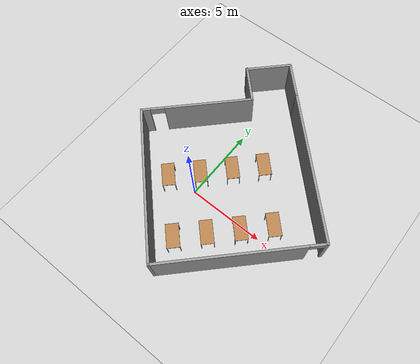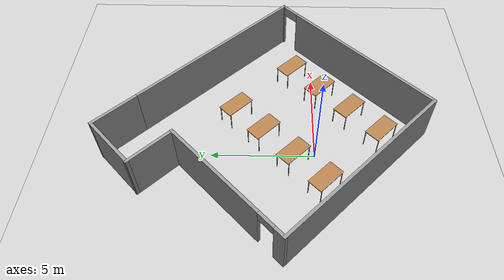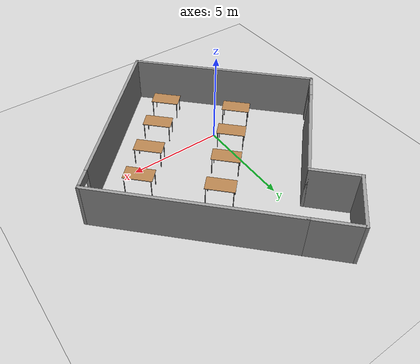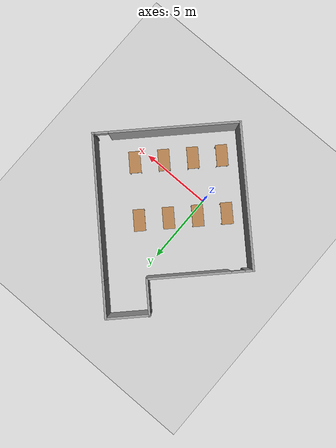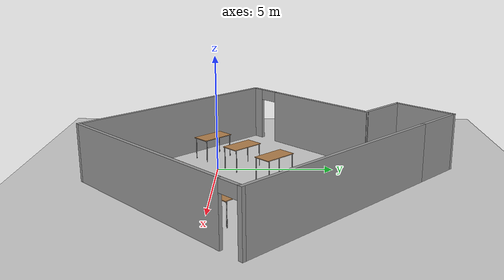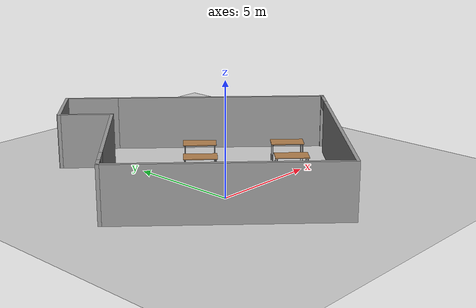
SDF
<sdf version="1.7">
 <world name="default">
  <scene><ambient>1 1 1 1</ambient><shadows>0</shadows><background>0.7 0.7 0.7 1</background></scene>
  <light name="sun" type="directional">
   <cast_shadows>0</cast_shadows>
   <pose>0 0 10 0 -0 -0.785398</pose>
   <diffuse>0.8 0.8 0.8 1</diffuse>
   <specular>0.2 0.2 0.2 1</specular>
   <attenuation>
    <range>1000</range>
    <constant>0.9</constant>
    <linear>0.01</linear>
    <quadratic>0.001</quadratic>
   </attenuation>
   <direction>-0.5 0.1 -0.9</direction>
   <spot><inner_angle>0</inner_angle><outer_angle>0</outer_angle><falloff>0</falloff></spot>
  </light>
  <light name="light_from_below_1" type="directional">
   <cast_shadows>0</cast_shadows>
   <pose>0 0 0 0 -0 -0.785398</pose>
   <diffuse>0.8 0.8 0.8 1</diffuse>
   <specular>0.2 0.2 0.2 1</specular>
   <attenuation>
    <range>1000</range>
    <constant>0.9</constant>
    <linear>0.01</linear>
    <quadratic>0.001</quadratic>
   </attenuation>
   <direction>-0.5 0.1 0.9</direction>
   <spot><inner_angle>0</inner_angle><outer_angle>0</outer_angle><falloff>0</falloff></spot>
  </light>
  <light name="light_from_below_2" type="directional">
   <cast_shadows>0</cast_shadows>
   <pose>0 0 0 0 -0 -0.785398</pose>
   <diffuse>0.8 0.8 0.8 1</diffuse>
   <specular>0.2 0.2 0.2 1</specular>
   <attenuation>
    <range>1000</range>
    <constant>0.9</constant>
    <linear>0.01</linear>
    <quadratic>0.001</quadratic>
   </attenuation>
   <direction>-0.5 0.1 0.9</direction>
   <spot><inner_angle>0</inner_angle><outer_angle>0</outer_angle><falloff>0</falloff></spot>
  </light>
  <model name="ground_plane">
   <static>1</static>
   <link name="link">
    <collision name="collision">
     <geometry><plane><normal>0 0 1</normal><size>100 100</size></plane></geometry>
     <surface>
      <contact><collide_bitmask>65535</collide_bitmask></contact>
      <friction><ode><mu>100</mu><mu2>50</mu2></ode></friction>
     </surface>
    </collision>
    <visual name="visual">
     <cast_shadows>0</cast_shadows>
     <geometry><plane><normal>0 0 1</normal><size>100 100</size></plane></geometry>
     <material>
      <script><uri>file://media/materials/scripts/gazebo.material</uri><name>Gazebo/Grey</name></script>
     </material>
    </visual>
   </link>
  </model>
  <gravity>0 0 -9.8</gravity>
  <magnetic_field>6e-06 2.3e-05 -4.2e-05</magnetic_field>
  <atmosphere type="adiabatic"/>
  <physics type="ode">
   <max_step_size>0.001</max_step_size>
   <real_time_factor>1</real_time_factor>
   <real_time_update_rate>1000</real_time_update_rate>
  </physics>
  <scene><ambient>0.4 0.4 0.4 1</ambient><background>0.7 0.7 0.7 1</background><shadows>1</shadows></scene>
  <spherical_coordinates>
   <surface_model>EARTH_WGS84</surface_model>
   <latitude_deg>0</latitude_deg>
   <longitude_deg>0</longitude_deg>
   <elevation>0</elevation>
   <heading_deg>0</heading_deg>
  </spherical_coordinates>
  <model name="table">
   <static>1</static>
   <link name="link">
    <collision name="surface">
     <pose>0 0 1 0 -0 0</pose>
     <geometry><box><size>1.5 0.8 0.03</size></box></geometry>
     <surface><friction><ode><mu>0.6</mu><mu2>0.6</mu2></ode></friction></surface>
    </collision>
    <visual name="visual1">
     <pose>0 0 1 0 -0 0</pose>
     <geometry><box><size>1.5 0.8 0.03</size></box></geometry>
     <material>
      <script><uri>file://media/materials/scripts/gazebo.material</uri><name>Gazebo/Wood</name></script>
     </material>
    </visual>
    <collision name="front_left_leg">
     <pose>0.68 0.38 0.5 0 -0 0</pose>
     <geometry><cylinder><radius>0.02</radius><length>1</length></cylinder></geometry>
    </collision>
    <visual name="front_left_leg">
     <pose>0.68 0.38 0.5 0 -0 0</pose>
     <geometry><cylinder><radius>0.02</radius><length>1</length></cylinder></geometry>
     <material>
      <script><uri>file://media/materials/scripts/gazebo.material</uri><name>Gazebo/Grey</name></script>
     </material>
    </visual>
    <collision name="front_right_leg">
     <pose>0.68 -0.38 0.5 0 -0 0</pose>
     <geometry><cylinder><radius>0.02</radius><length>1</length></cylinder></geometry>
    </collision>
    <visual name="front_right_leg">
     <pose>0.68 -0.38 0.5 0 -0 0</pose>
     <geometry><cylinder><radius>0.02</radius><length>1</length></cylinder></geometry>
     <material>
      <script><uri>file://media/materials/scripts/gazebo.material</uri><name>Gazebo/Grey</name></script>
     </material>
    </visual>
    <collision name="back_right_leg">
     <pose>-0.68 -0.38 0.5 0 -0 0</pose>
     <geometry><cylinder><radius>0.02</radius><length>1</length></cylinder></geometry>
    </collision>
    <visual name="back_right_leg">
     <pose>-0.68 -0.38 0.5 0 -0 0</pose>
     <geometry><cylinder><radius>0.02</radius><length>1</length></cylinder></geometry>
     <material>
      <script><uri>file://media/materials/scripts/gazebo.material</uri><name>Gazebo/Grey</name></script>
     </material>
    </visual>
    <collision name="back_left_leg">
     <pose>-0.68 0.38 0.5 0 -0 0</pose>
     <geometry><cylinder><radius>0.02</radius><length>1</length></cylinder></geometry>
    </collision>
    <visual name="back_left_leg">
     <pose>-0.68 0.38 0.5 0 -0 0</pose>
     <geometry><cylinder><radius>0.02</radius><length>1</length></cylinder></geometry>
     <material>
      <script><uri>file://media/materials/scripts/gazebo.material</uri><name>Gazebo/Grey</name></script>
     </material>
    </visual>
   </link>
   <pose>-1.7678 -0.3536 0 0 0 -0.785398</pose>
  </model>
  <model name="table_0_clone">
   <static>1</static>
   <link name="link">
    <collision name="surface">
     <pose>0 0 1 0 -0 0</pose>
     <geometry><box><size>1.5 0.8 0.03</size></box></geometry>
     <surface><friction><ode><mu>0.6</mu><mu2>0.6</mu2></ode></friction></surface>
    </collision>
    <visual name="visual1">
     <pose>0 0 1 0 -0 0</pose>
     <geometry><box><size>1.5 0.8 0.03</size></box></geometry>
     <material>
      <script><uri>file://media/materials/scripts/gazebo.material</uri><name>Gazebo/Wood</name></script>
     </material>
    </visual>
    <collision name="front_left_leg">
     <pose>0.68 0.38 0.5 0 -0 0</pose>
     <geometry><cylinder><radius>0.02</radius><length>1</length></cylinder></geometry>
    </collision>
    <visual name="front_left_leg">
     <pose>0.68 0.38 0.5 0 -0 0</pose>
     <geometry><cylinder><radius>0.02</radius><length>1</length></cylinder></geometry>
     <material>
      <script><uri>file://media/materials/scripts/gazebo.material</uri><name>Gazebo/Grey</name></script>
     </material>
    </visual>
    <collision name="front_right_leg">
     <pose>0.68 -0.38 0.5 0 -0 0</pose>
     <geometry><cylinder><radius>0.02</radius><length>1</length></cylinder></geometry>
    </collision>
    <visual name="front_right_leg">
     <pose>0.68 -0.38 0.5 0 -0 0</pose>
     <geometry><cylinder><radius>0.02</radius><length>1</length></cylinder></geometry>
     <material>
      <script><uri>file://media/materials/scripts/gazebo.material</uri><name>Gazebo/Grey</name></script>
     </material>
    </visual>
    <collision name="back_right_leg">
     <pose>-0.68 -0.38 0.5 0 -0 0</pose>
     <geometry><cylinder><radius>0.02</radius><length>1</length></cylinder></geometry>
    </collision>
    <visual name="back_right_leg">
     <pose>-0.68 -0.38 0.5 0 -0 0</pose>
     <geometry><cylinder><radius>0.02</radius><length>1</length></cylinder></geometry>
     <material>
      <script><uri>file://media/materials/scripts/gazebo.material</uri><name>Gazebo/Grey</name></script>
     </material>
    </visual>
    <collision name="back_left_leg">
     <pose>-0.68 0.38 0.5 0 -0 0</pose>
     <geometry><cylinder><radius>0.02</radius><length>1</length></cylinder></geometry>
    </collision>
    <visual name="back_left_leg">
     <pose>-0.68 0.38 0.5 0 -0 0</pose>
     <geometry><cylinder><radius>0.02</radius><length>1</length></cylinder></geometry>
     <material>
      <script><uri>file://media/materials/scripts/gazebo.material</uri><name>Gazebo/Grey</name></script>
     </material>
    </visual>
   </link>
   <pose>1.06066 -3.18198 0 0 0 -0.785397</pose>
  </model>
  <model name="table_0_clone_1">
   <static>1</static>
   <link name="link">
    <collision name="surface">
     <pose>0 0 1 0 -0 0</pose>
     <geometry><box><size>1.5 0.8 0.03</size></box></geometry>
     <surface><friction><ode><mu>0.6</mu><mu2>0.6</mu2></ode></friction></surface>
    </collision>
    <visual name="visual1">
     <pose>0 0 1 0 -0 0</pose>
     <geometry><box><size>1.5 0.8 0.03</size></box></geometry>
     <material>
      <script><uri>file://media/materials/scripts/gazebo.material</uri><name>Gazebo/Wood</name></script>
     </material>
    </visual>
    <collision name="front_left_leg">
     <pose>0.68 0.38 0.5 0 -0 0</pose>
     <geometry><cylinder><radius>0.02</radius><length>1</length></cylinder></geometry>
    </collision>
    <visual name="front_left_leg">
     <pose>0.68 0.38 0.5 0 -0 0</pose>
     <geometry><cylinder><radius>0.02</radius><length>1</length></cylinder></geometry>
     <material>
      <script><uri>file://media/materials/scripts/gazebo.material</uri><name>Gazebo/Grey</name></script>
     </material>
    </visual>
    <collision name="front_right_leg">
     <pose>0.68 -0.38 0.5 0 -0 0</pose>
     <geometry><cylinder><radius>0.02</radius><length>1</length></cylinder></geometry>
    </collision>
    <visual name="front_right_leg">
     <pose>0.68 -0.38 0.5 0 -0 0</pose>
     <geometry><cylinder><radius>0.02</radius><length>1</length></cylinder></geometry>
     <material>
      <script><uri>file://media/materials/scripts/gazebo.material</uri><name>Gazebo/Grey</name></script>
     </material>
    </visual>
    <collision name="back_right_leg">
     <pose>-0.68 -0.38 0.5 0 -0 0</pose>
     <geometry><cylinder><radius>0.02</radius><length>1</length></cylinder></geometry>
    </collision>
    <visual name="back_right_leg">
     <pose>-0.68 -0.38 0.5 0 -0 0</pose>
     <geometry><cylinder><radius>0.02</radius><length>1</length></cylinder></geometry>
     <material>
      <script><uri>file://media/materials/scripts/gazebo.material</uri><name>Gazebo/Grey</name></script>
     </material>
    </visual>
    <collision name="back_left_leg">
     <pose>-0.68 0.38 0.5 0 -0 0</pose>
     <geometry><cylinder><radius>0.02</radius><length>1</length></cylinder></geometry>
    </collision>
    <visual name="back_left_leg">
     <pose>-0.68 0.38 0.5 0 -0 0</pose>
     <geometry><cylinder><radius>0.02</radius><length>1</length></cylinder></geometry>
     <material>
      <script><uri>file://media/materials/scripts/gazebo.material</uri><name>Gazebo/Grey</name></script>
     </material>
    </visual>
   </link>
   <pose>5.3033 1.06066 0 0 0 -0.785398</pose>
  </model>
  <model name="table_0_clone_2">
   <static>1</static>
   <link name="link">
    <collision name="surface">
     <pose>0 0 1 0 -0 0</pose>
     <geometry><box><size>1.5 0.8 0.03</size></box></geometry>
     <surface><friction><ode><mu>0.6</mu><mu2>0.6</mu2></ode></friction></surface>
    </collision>
    <visual name="visual1">
     <pose>0 0 1 0 -0 0</pose>
     <geometry><box><size>1.5 0.8 0.03</size></box></geometry>
     <material>
      <script><uri>file://media/materials/scripts/gazebo.material</uri><name>Gazebo/Wood</name></script>
     </material>
    </visual>
    <collision name="front_left_leg">
     <pose>0.68 0.38 0.5 0 -0 0</pose>
     <geometry><cylinder><radius>0.02</radius><length>1</length></cylinder></geometry>
    </collision>
    <visual name="front_left_leg">
     <pose>0.68 0.38 0.5 0 -0 0</pose>
     <geometry><cylinder><radius>0.02</radius><length>1</length></cylinder></geometry>
     <material>
      <script><uri>file://media/materials/scripts/gazebo.material</uri><name>Gazebo/Grey</name></script>
     </material>
    </visual>
    <collision name="front_right_leg">
     <pose>0.68 -0.38 0.5 0 -0 0</pose>
     <geometry><cylinder><radius>0.02</radius><length>1</length></cylinder></geometry>
    </collision>
    <visual name="front_right_leg">
     <pose>0.68 -0.38 0.5 0 -0 0</pose>
     <geometry><cylinder><radius>0.02</radius><length>1</length></cylinder></geometry>
     <material>
      <script><uri>file://media/materials/scripts/gazebo.material</uri><name>Gazebo/Grey</name></script>
     </material>
    </visual>
    <collision name="back_right_leg">
     <pose>-0.68 -0.38 0.5 0 -0 0</pose>
     <geometry><cylinder><radius>0.02</radius><length>1</length></cylinder></geometry>
    </collision>
    <visual name="back_right_leg">
     <pose>-0.68 -0.38 0.5 0 -0 0</pose>
     <geometry><cylinder><radius>0.02</radius><length>1</length></cylinder></geometry>
     <material>
      <script><uri>file://media/materials/scripts/gazebo.material</uri><name>Gazebo/Grey</name></script>
     </material>
    </visual>
    <collision name="back_left_leg">
     <pose>-0.68 0.38 0.5 0 -0 0</pose>
     <geometry><cylinder><radius>0.02</radius><length>1</length></cylinder></geometry>
    </collision>
    <visual name="back_left_leg">
     <pose>-0.68 0.38 0.5 0 -0 0</pose>
     <geometry><cylinder><radius>0.02</radius><length>1</length></cylinder></geometry>
     <material>
      <script><uri>file://media/materials/scripts/gazebo.material</uri><name>Gazebo/Grey</name></script>
     </material>
    </visual>
   </link>
   <pose>2.47487 -1.76777 0 0 0 -0.785397</pose>
  </model>
  <model name="table_0_clone_3">
   <static>1</static>
   <link name="link">
    <collision name="surface">
     <pose>0 0 1 0 -0 0</pose>
     <geometry><box><size>1.5 0.8 0.03</size></box></geometry>
     <surface><friction><ode><mu>0.6</mu><mu2>0.6</mu2></ode></friction></surface>
    </collision>
    <visual name="visual1">
     <pose>0 0 1 0 -0 0</pose>
     <geometry><box><size>1.5 0.8 0.03</size></box></geometry>
     <material>
      <script><uri>file://media/materials/scripts/gazebo.material</uri><name>Gazebo/Wood</name></script>
     </material>
    </visual>
    <collision name="front_left_leg">
     <pose>0.68 0.38 0.5 0 -0 0</pose>
     <geometry><cylinder><radius>0.02</radius><length>1</length></cylinder></geometry>
    </collision>
    <visual name="front_left_leg">
     <pose>0.68 0.38 0.5 0 -0 0</pose>
     <geometry><cylinder><radius>0.02</radius><length>1</length></cylinder></geometry>
     <material>
      <script><uri>file://media/materials/scripts/gazebo.material</uri><name>Gazebo/Grey</name></script>
     </material>
    </visual>
    <collision name="front_right_leg">
     <pose>0.68 -0.38 0.5 0 -0 0</pose>
     <geometry><cylinder><radius>0.02</radius><length>1</length></cylinder></geometry>
    </collision>
    <visual name="front_right_leg">
     <pose>0.68 -0.38 0.5 0 -0 0</pose>
     <geometry><cylinder><radius>0.02</radius><length>1</length></cylinder></geometry>
     <material>
      <script><uri>file://media/materials/scripts/gazebo.material</uri><name>Gazebo/Grey</name></script>
     </material>
    </visual>
    <collision name="back_right_leg">
     <pose>-0.68 -0.38 0.5 0 -0 0</pose>
     <geometry><cylinder><radius>0.02</radius><length>1</length></cylinder></geometry>
    </collision>
    <visual name="back_right_leg">
     <pose>-0.68 -0.38 0.5 0 -0 0</pose>
     <geometry><cylinder><radius>0.02</radius><length>1</length></cylinder></geometry>
     <material>
      <script><uri>file://media/materials/scripts/gazebo.material</uri><name>Gazebo/Grey</name></script>
     </material>
    </visual>
    <collision name="back_left_leg">
     <pose>-0.68 0.38 0.5 0 -0 0</pose>
     <geometry><cylinder><radius>0.02</radius><length>1</length></cylinder></geometry>
    </collision>
    <visual name="back_left_leg">
     <pose>-0.68 0.38 0.5 0 -0 0</pose>
     <geometry><cylinder><radius>0.02</radius><length>1</length></cylinder></geometry>
     <material>
      <script><uri>file://media/materials/scripts/gazebo.material</uri><name>Gazebo/Grey</name></script>
     </material>
    </visual>
   </link>
   <pose>-0.353553 1.06066 0 0 0 -0.785398</pose>
  </model>
  <model name="table_0_clone_4">
   <static>1</static>
   <link name="link">
    <collision name="surface">
     <pose>0 0 1 0 -0 0</pose>
     <geometry><box><size>1.5 0.8 0.03</size></box></geometry>
     <surface><friction><ode><mu>0.6</mu><mu2>0.6</mu2></ode></friction></surface>
    </collision>
    <visual name="visual1">
     <pose>0 0 1 0 -0 0</pose>
     <geometry><box><size>1.5 0.8 0.03</size></box></geometry>
     <material>
      <script><uri>file://media/materials/scripts/gazebo.material</uri><name>Gazebo/Wood</name></script>
     </material>
    </visual>
    <collision name="front_left_leg">
     <pose>0.68 0.38 0.5 0 -0 0</pose>
     <geometry><cylinder><radius>0.02</radius><length>1</length></cylinder></geometry>
    </collision>
    <visual name="front_left_leg">
     <pose>0.68 0.38 0.5 0 -0 0</pose>
     <geometry><cylinder><radius>0.02</radius><length>1</length></cylinder></geometry>
     <material>
      <script><uri>file://media/materials/scripts/gazebo.material</uri><name>Gazebo/Grey</name></script>
     </material>
    </visual>
    <collision name="front_right_leg">
     <pose>0.68 -0.38 0.5 0 -0 0</pose>
     <geometry><cylinder><radius>0.02</radius><length>1</length></cylinder></geometry>
    </collision>
    <visual name="front_right_leg">
     <pose>0.68 -0.38 0.5 0 -0 0</pose>
     <geometry><cylinder><radius>0.02</radius><length>1</length></cylinder></geometry>
     <material>
      <script><uri>file://media/materials/scripts/gazebo.material</uri><name>Gazebo/Grey</name></script>
     </material>
    </visual>
    <collision name="back_right_leg">
     <pose>-0.68 -0.38 0.5 0 -0 0</pose>
     <geometry><cylinder><radius>0.02</radius><length>1</length></cylinder></geometry>
    </collision>
    <visual name="back_right_leg">
     <pose>-0.68 -0.38 0.5 0 -0 0</pose>
     <geometry><cylinder><radius>0.02</radius><length>1</length></cylinder></geometry>
     <material>
      <script><uri>file://media/materials/scripts/gazebo.material</uri><name>Gazebo/Grey</name></script>
     </material>
    </visual>
    <collision name="back_left_leg">
     <pose>-0.68 0.38 0.5 0 -0 0</pose>
     <geometry><cylinder><radius>0.02</radius><length>1</length></cylinder></geometry>
    </collision>
    <visual name="back_left_leg">
     <pose>-0.68 0.38 0.5 0 -0 0</pose>
     <geometry><cylinder><radius>0.02</radius><length>1</length></cylinder></geometry>
     <material>
      <script><uri>file://media/materials/scripts/gazebo.material</uri><name>Gazebo/Grey</name></script>
     </material>
    </visual>
   </link>
   <pose>2.47487 3.88909 0 0 0 -0.785398</pose>
  </model>
  <model name="table_0_clone_5">
   <static>1</static>
   <link name="link">
    <collision name="surface">
     <pose>0 0 1 0 -0 0</pose>
     <geometry><box><size>1.5 0.8 0.03</size></box></geometry>
     <surface><friction><ode><mu>0.6</mu><mu2>0.6</mu2></ode></friction></surface>
    </collision>
    <visual name="visual1">
     <pose>0 0 1 0 -0 0</pose>
     <geometry><box><size>1.5 0.8 0.03</size></box></geometry>
     <material>
      <script><uri>file://media/materials/scripts/gazebo.material</uri><name>Gazebo/Wood</name></script>
     </material>
    </visual>
    <collision name="front_left_leg">
     <pose>0.68 0.38 0.5 0 -0 0</pose>
     <geometry><cylinder><radius>0.02</radius><length>1</length></cylinder></geometry>
    </collision>
    <visual name="front_left_leg">
     <pose>0.68 0.38 0.5 0 -0 0</pose>
     <geometry><cylinder><radius>0.02</radius><length>1</length></cylinder></geometry>
     <material>
      <script><uri>file://media/materials/scripts/gazebo.material</uri><name>Gazebo/Grey</name></script>
     </material>
    </visual>
    <collision name="front_right_leg">
     <pose>0.68 -0.38 0.5 0 -0 0</pose>
     <geometry><cylinder><radius>0.02</radius><length>1</length></cylinder></geometry>
    </collision>
    <visual name="front_right_leg">
     <pose>0.68 -0.38 0.5 0 -0 0</pose>
     <geometry><cylinder><radius>0.02</radius><length>1</length></cylinder></geometry>
     <material>
      <script><uri>file://media/materials/scripts/gazebo.material</uri><name>Gazebo/Grey</name></script>
     </material>
    </visual>
    <collision name="back_right_leg">
     <pose>-0.68 -0.38 0.5 0 -0 0</pose>
     <geometry><cylinder><radius>0.02</radius><length>1</length></cylinder></geometry>
    </collision>
    <visual name="back_right_leg">
     <pose>-0.68 -0.38 0.5 0 -0 0</pose>
     <geometry><cylinder><radius>0.02</radius><length>1</length></cylinder></geometry>
     <material>
      <script><uri>file://media/materials/scripts/gazebo.material</uri><name>Gazebo/Grey</name></script>
     </material>
    </visual>
    <collision name="back_left_leg">
     <pose>-0.68 0.38 0.5 0 -0 0</pose>
     <geometry><cylinder><radius>0.02</radius><length>1</length></cylinder></geometry>
    </collision>
    <visual name="back_left_leg">
     <pose>-0.68 0.38 0.5 0 -0 0</pose>
     <geometry><cylinder><radius>0.02</radius><length>1</length></cylinder></geometry>
     <material>
      <script><uri>file://media/materials/scripts/gazebo.material</uri><name>Gazebo/Grey</name></script>
     </material>
    </visual>
   </link>
   <pose>1.06066 2.47487 0 0 0 -0.785398</pose>
  </model>
  <model name="table_0_clone_1_clone_clone">
   <static>1</static>
   <link name="link">
    <collision name="surface">
     <pose>0 0 1 0 -0 0</pose>
     <geometry><box><size>1.5 0.8 0.03</size></box></geometry>
     <surface><friction><ode><mu>0.6</mu><mu2>0.6</mu2></ode></friction></surface>
    </collision>
    <visual name="visual1">
     <pose>0 0 1 0 -0 0</pose>
     <geometry><box><size>1.5 0.8 0.03</size></box></geometry>
     <material>
      <script><uri>file://media/materials/scripts/gazebo.material</uri><name>Gazebo/Wood</name></script>
     </material>
    </visual>
    <collision name="front_left_leg">
     <pose>0.68 0.38 0.5 0 -0 0</pose>
     <geometry><cylinder><radius>0.02</radius><length>1</length></cylinder></geometry>
    </collision>
    <visual name="front_left_leg">
     <pose>0.68 0.38 0.5 0 -0 0</pose>
     <geometry><cylinder><radius>0.02</radius><length>1</length></cylinder></geometry>
     <material>
      <script><uri>file://media/materials/scripts/gazebo.material</uri><name>Gazebo/Grey</name></script>
     </material>
    </visual>
    <collision name="front_right_leg">
     <pose>0.68 -0.38 0.5 0 -0 0</pose>
     <geometry><cylinder><radius>0.02</radius><length>1</length></cylinder></geometry>
    </collision>
    <visual name="front_right_leg">
     <pose>0.68 -0.38 0.5 0 -0 0</pose>
     <geometry><cylinder><radius>0.02</radius><length>1</length></cylinder></geometry>
     <material>
      <script><uri>file://media/materials/scripts/gazebo.material</uri><name>Gazebo/Grey</name></script>
     </material>
    </visual>
    <collision name="back_right_leg">
     <pose>-0.68 -0.38 0.5 0 -0 0</pose>
     <geometry><cylinder><radius>0.02</radius><length>1</length></cylinder></geometry>
    </collision>
    <visual name="back_right_leg">
     <pose>-0.68 -0.38 0.5 0 -0 0</pose>
     <geometry><cylinder><radius>0.02</radius><length>1</length></cylinder></geometry>
     <material>
      <script><uri>file://media/materials/scripts/gazebo.material</uri><name>Gazebo/Grey</name></script>
     </material>
    </visual>
    <collision name="back_left_leg">
     <pose>-0.68 0.38 0.5 0 -0 0</pose>
     <geometry><cylinder><radius>0.02</radius><length>1</length></cylinder></geometry>
    </collision>
    <visual name="back_left_leg">
     <pose>-0.68 0.38 0.5 0 -0 0</pose>
     <geometry><cylinder><radius>0.02</radius><length>1</length></cylinder></geometry>
     <material>
      <script><uri>file://media/materials/scripts/gazebo.material</uri><name>Gazebo/Grey</name></script>
     </material>
    </visual>
   </link>
   <pose>3.88909 -0.353553 0 0 0 -0.785398</pose>
  </model>
  <model name="Kog_beo_room_10_10_25">
   <pose>0.688283 2.35315 0 0 0 -0.785398</pose>
   <link name="Wall_52">
    <collision name="Wall_52_Collision">
     <geometry><box><size>10 0.15 2.5</size></box></geometry>
     <pose>0 0 1.25 0 -0 0</pose>
    </collision>
    <visual name="Wall_52_Visual">
     <pose>0 0 1.25 0 -0 0</pose>
     <geometry><box><size>10 0.15 2.5</size></box></geometry>
     <material>
      <script><uri>file://media/materials/scripts/gazebo.material</uri><name>Gazebo/Grey</name></script>
      <ambient>1 1 1 1</ambient>
     </material>
     <meta><layer>0</layer></meta>
    </visual>
    <pose>1.18506 4.92498 0 0 -0 0</pose>
   </link>
   <link name="Wall_53">
    <pose>6.11006 -1.8e-05 0 0 -0 -1.5708</pose>
    <visual name="Wall_53_Visual_0">
     <pose>-4.89745 0 1.25 0 -0 0</pose>
     <geometry><box><size>0.20511 0.15 2.5</size></box></geometry>
     <material>
      <script><uri>file://media/materials/scripts/gazebo.material</uri><name>Gazebo/Grey</name></script>
      <ambient>1 1 1 1</ambient>
     </material>
     <meta><layer>0</layer></meta>
    </visual>
    <collision name="Wall_53_Collision_0">
     <geometry><box><size>0.20511 0.15 2.5</size></box></geometry>
     <pose>-4.89745 0 1.25 0 -0 0</pose>
    </collision>
    <visual name="Wall_53_Visual_1">
     <pose>0.552555 0 1.25 0 -0 0</pose>
     <geometry><box><size>8.89489 0.15 2.5</size></box></geometry>
     <material>
      <script><uri>file://media/materials/scripts/gazebo.material</uri><name>Gazebo/Grey</name></script>
      <ambient>1 1 1 1</ambient>
     </material>
     <meta><layer>0</layer></meta>
    </visual>
    <collision name="Wall_53_Collision_1">
     <geometry><box><size>8.89489 0.15 2.5</size></box></geometry>
     <pose>0.552555 0 1.25 0 -0 0</pose>
    </collision>
    <visual name="Wall_53_Visual_2">
     <pose>-4.34489 0 2.25 0 -0 0</pose>
     <geometry><box><size>0.9 0.15 0.5</size></box></geometry>
     <material>
      <script><uri>file://media/materials/scripts/gazebo.material</uri><name>Gazebo/Grey</name></script>
      <ambient>1 1 1 1</ambient>
     </material>
     <meta><layer>0</layer></meta>
    </visual>
    <collision name="Wall_53_Collision_2">
     <geometry><box><size>0.9 0.15 0.5</size></box></geometry>
     <pose>-4.34489 0 2.25 0 -0 0</pose>
    </collision>
   </link>
   <link name="Wall_54">
    <collision name="Wall_54_Collision">
     <geometry><box><size>10 0.15 2.5</size></box></geometry>
     <pose>0 0 1.25 0 -0 0</pose>
    </collision>
    <visual name="Wall_54_Visual">
     <pose>0 0 1.25 0 -0 0</pose>
     <geometry><box><size>10 0.15 2.5</size></box></geometry>
     <material>
      <script><uri>file://media/materials/scripts/gazebo.material</uri><name>Gazebo/Grey</name></script>
      <ambient>1 1 1 1</ambient>
     </material>
     <meta><layer>0</layer></meta>
    </visual>
    <pose>1.18506 -4.92502 0 0 -0 3.14159</pose>
   </link>
   <link name="Wall_57">
    <collision name="Wall_57_Collision">
     <geometry><box><size>2.5 0.15 2.5</size></box></geometry>
     <pose>0 0 1.25 0 -0 0</pose>
    </collision>
    <visual name="Wall_57_Visual">
     <pose>0 0 1.25 0 -0 0</pose>
     <geometry><box><size>2.5 0.15 2.5</size></box></geometry>
     <material>
      <script><uri>file://media/materials/scripts/gazebo.material</uri><name>Gazebo/Grey</name></script>
      <ambient>1 1 1 1</ambient>
     </material>
     <meta><layer>0</layer></meta>
    </visual>
    <pose>-4.91494 4.92498 0 0 -0 3.14159</pose>
   </link>
   <link name="Wall_58">
    <collision name="Wall_58_Collision">
     <geometry><box><size>3.00007 0.15 2.5</size></box></geometry>
     <pose>0 0 1.25 0 -0 0</pose>
    </collision>
    <visual name="Wall_58_Visual">
     <pose>0 0 1.25 0 -0 0</pose>
     <geometry><box><size>3.00007 0.15 2.5</size></box></geometry>
     <material>
      <script><uri>file://media/materials/scripts/gazebo.material</uri><name>Gazebo/Grey</name></script>
      <ambient>1 1 1 1</ambient>
     </material>
     <meta><layer>0</layer></meta>
    </visual>
    <pose>-6.08994 3.49998 0 0 -0 -1.5708</pose>
   </link>
   <link name="Wall_59">
    <collision name="Wall_59_Collision">
     <geometry><box><size>2.5 0.15 2.5</size></box></geometry>
     <pose>0 0 1.25 0 -0 0</pose>
    </collision>
    <visual name="Wall_59_Visual">
     <pose>0 0 1.25 0 -0 0</pose>
     <geometry><box><size>2.5 0.15 2.5</size></box></geometry>
     <material>
      <script><uri>file://media/materials/scripts/gazebo.material</uri><name>Gazebo/Grey</name></script>
      <ambient>1 1 1 1</ambient>
     </material>
     <meta><layer>0</layer></meta>
    </visual>
    <pose>-4.93506 2.07498 0 0 -0 0</pose>
   </link>
   <link name="Wall_60">
    <pose>-3.73994 -1.42502 0 0 -0 -1.5708</pose>
    <visual name="Wall_60_Visual_0">
     <pose>-0.764106 0 1.25 0 -0 0</pose>
     <geometry><box><size>5.62179 0.15 2.5</size></box></geometry>
     <material>
      <script><uri>file://media/materials/scripts/gazebo.material</uri><name>Gazebo/Grey</name></script>
      <ambient>1 1 1 1</ambient>
     </material>
     <meta><layer>0</layer></meta>
    </visual>
    <collision name="Wall_60_Collision_0">
     <geometry><box><size>5.62179 0.15 2.5</size></box></geometry>
     <pose>-0.764106 0 1.25 0 -0 0</pose>
    </collision>
    <visual name="Wall_60_Visual_1">
     <pose>3.26089 0 1.25 0 -0 0</pose>
     <geometry><box><size>0.628212 0.15 2.5</size></box></geometry>
     <material>
      <script><uri>file://media/materials/scripts/gazebo.material</uri><name>Gazebo/Grey</name></script>
      <ambient>1 1 1 1</ambient>
     </material>
     <meta><layer>0</layer></meta>
    </visual>
    <collision name="Wall_60_Collision_1">
     <geometry><box><size>0.628212 0.15 2.5</size></box></geometry>
     <pose>3.26089 0 1.25 0 -0 0</pose>
    </collision>
    <visual name="Wall_60_Visual_2">
     <pose>2.49679 0 2.25 0 -0 0</pose>
     <geometry><box><size>0.9 0.15 0.5</size></box></geometry>
     <material>
      <script><uri>file://media/materials/scripts/gazebo.material</uri><name>Gazebo/Grey</name></script>
      <ambient>1 1 1 1</ambient>
     </material>
     <meta><layer>0</layer></meta>
    </visual>
    <collision name="Wall_60_Collision_2">
     <geometry><box><size>0.9 0.15 0.5</size></box></geometry>
     <pose>2.49679 0 2.25 0 -0 0</pose>
    </collision>
   </link>
   <static>1</static>
  </model>
 </world>
</sdf>
